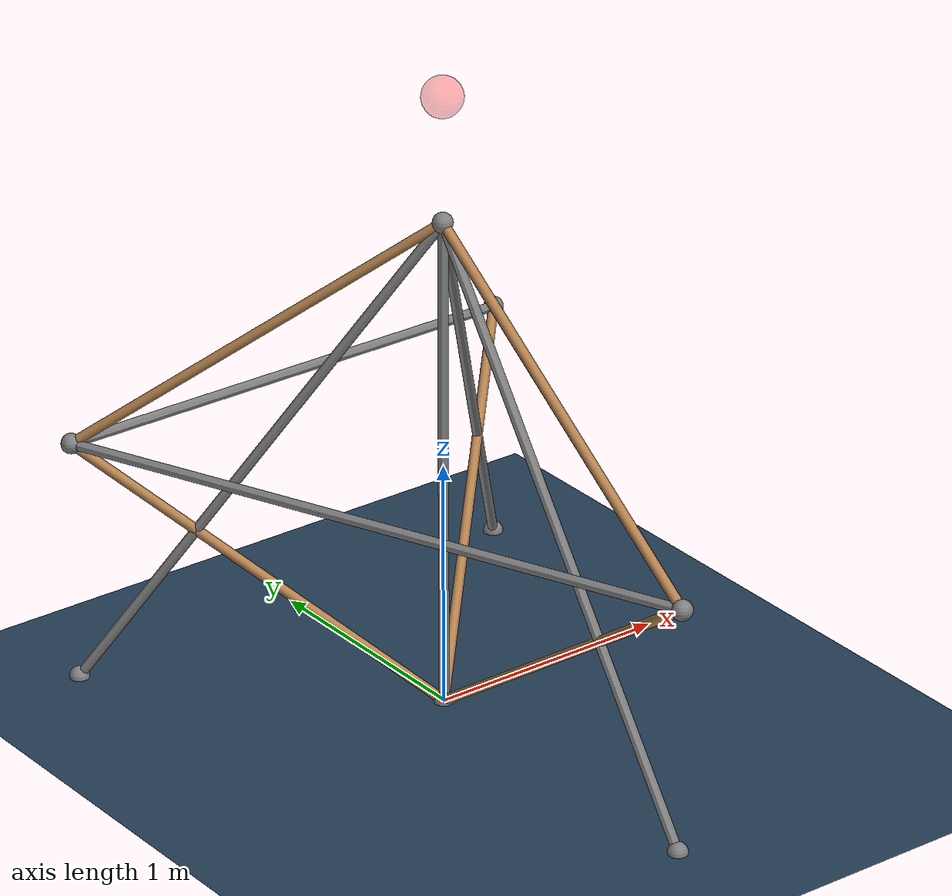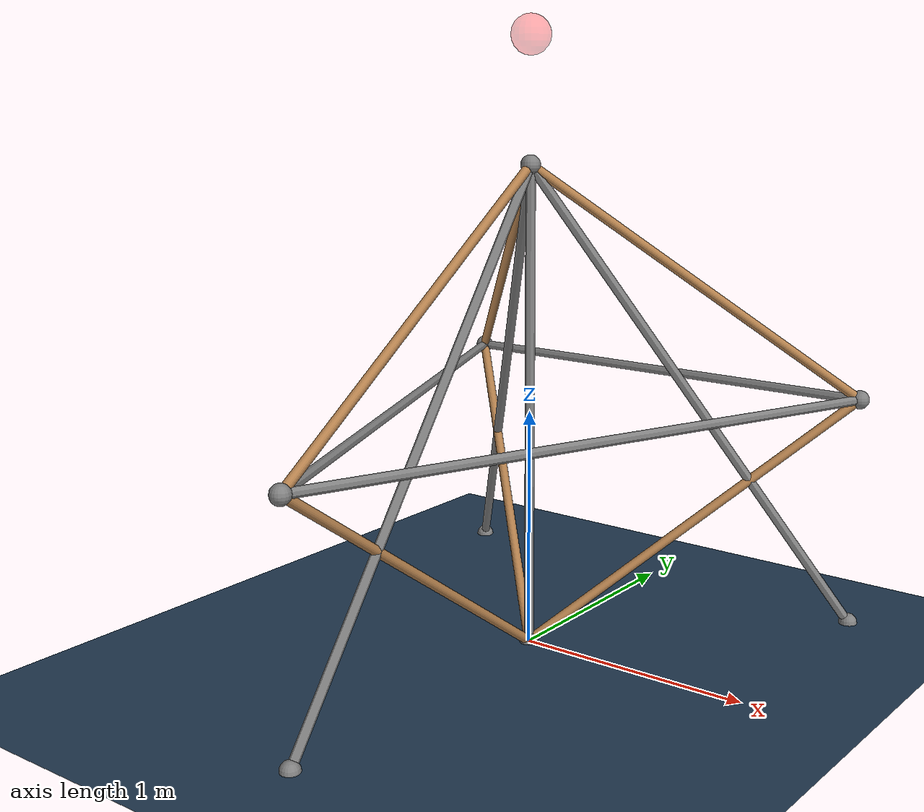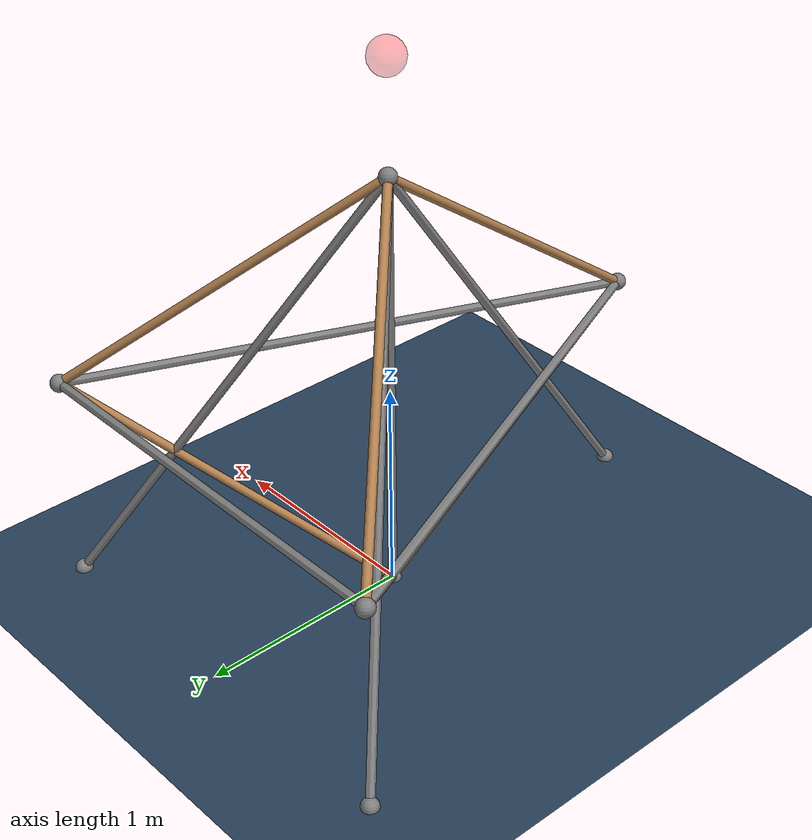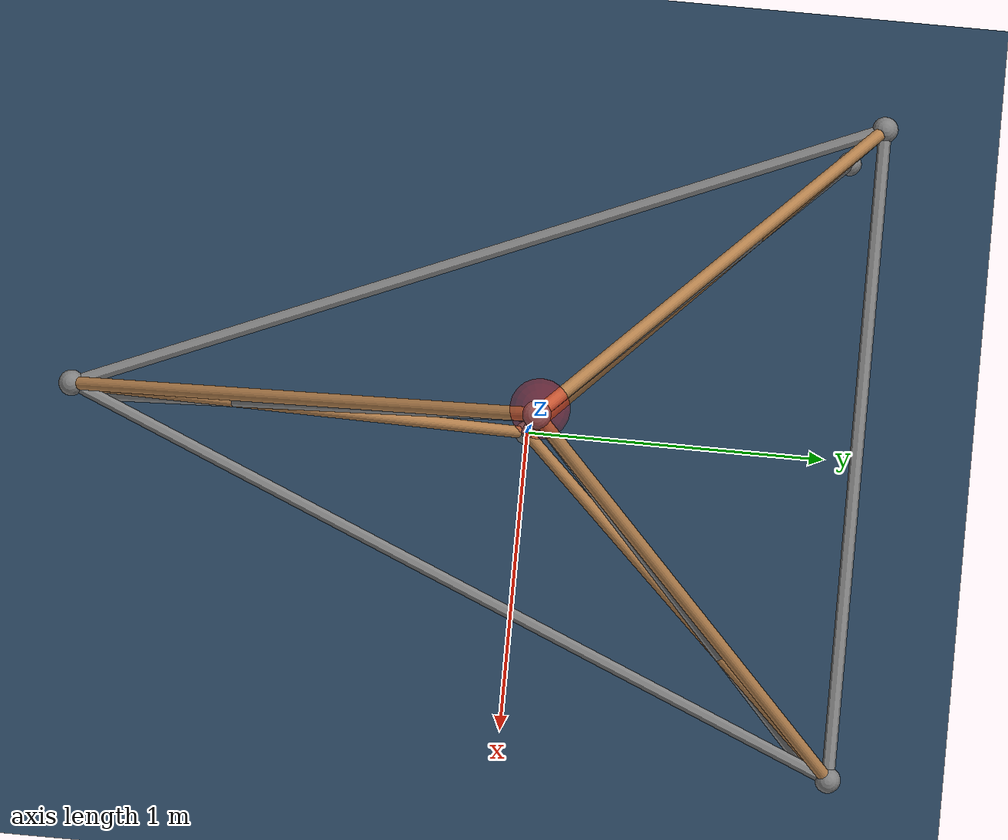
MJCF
<mujoco model="dbar3d">
    <include file="./common/visual.xml"/>
    <include file="./common/skybox.xml"/>
    <include file="./common/materials.xml"/>

    <option timestep="0.01" iterations="50" solver="Newton" integrator="RK4" tolerance="1e-12" gravity = "0 0 0" collision="predefined" viscosity="0"/>

    <size njmax="200" nconmax="100" nstack="2400"/>

    <visual>
        <rgba haze=".15 .25 .35 1"/>
    </visual>

    <default>
        <joint type="ball" pos="0 0 0" limited="false" damping="0"/>
        <motor ctrllimited="false" ctrlrange="-100 100"/>
		<tendon stiffness="100" damping="0.5"/>
		<geom size="0.02" mass="1"/>
		<site size="0.04"/>
    </default>

    <worldbody>
        <light directional="true" diffuse=".8 .8 .8" specular=".2 .2 .2" pos="0 0 5" dir="0 0 -1"/>

        <body name="lbar1" pos="0 0 0">
            <geom type="capsule" fromto="0 0 0  1 1 1" material="self"/>
			<site name="lb1e" pos="1 1 1"/>
			<joint name="lj1"/>
            <body name="lbar2" pos="1 1 1">
                <geom type="capsule" fromto="0 0 0  -1 -1 1" material="self"/>
                <joint name="lj2"/>
                <site name="lb2e" pos="-1 -1 1"/>
            </body>
        </body>

        <body name="mbar1" pos="0 0 0">
            <geom type="capsule" fromto="0 0 0  -1 1 1" material="self"/>
			<site name="mb1e" pos="-1 1 1"/>
			<joint name="mj1"/>
            <body name="mbar2" pos="-1 1 1">
                <geom type="capsule" fromto="0 0 0  1 -1 1" material="self"/>
                <joint name="mj2"/>
            </body>
        </body>

        <body name="rbar1" pos="0 0 0">
            <geom type="capsule" fromto="0 0 0  0 -1.414 1" material="self"/>
			<site name="rb1e" pos="0 -1.414 1"/>
			<joint name="rj1"/>
            <body name="rbar2" pos="0 -1.414 1">
                <geom type="capsule" fromto="0 0 0  0 1.414 1" material="self"/>
                <joint name="rj2"/>
            </body>
        </body>

		<body pos="0 0 0">
			<geom name="floor" pos="0 0 0" size="0 0 1" type="plane" material="grid"/>
			<site name="f0" pos="0 0 0"/>
			<site name="fl" pos="1 1 0"/>
			<site name="fm" pos="-1 1 0"/>
            <site name="fr" pos="0 -1.414 0"/>
			<site name="target" pos="0. 0. 2.5" size="0.08" rgba="1 0 0 .3"/>
		</body>
    </worldbody>

	<equality>
		<connect active="true" name='c1' body1='lbar2' body2='mbar2' anchor='-1 -1 1'/>
		<connect active="true" name='c2' body1='lbar2' body2='rbar2' anchor='-1 -1 1'/>
	</equality>

    <tendon>
        <spatial name="S1" width="0.02">
            <site site="f0"/>
            <site site="lb2e"/>
        </spatial>
		<spatial name="S2" width="0.02">
            <site site="lb1e"/>
            <site site="mb1e"/>
        </spatial>
		<spatial name="S3" width="0.02">
            <site site="mb1e"/>
            <site site="rb1e"/>
        </spatial>
		<spatial name="S4" width="0.02">
            <site site="lb1e"/>
            <site site="rb1e"/>
        </spatial>
        <spatial name="S5" width="0.02">
            <site site="lb2e"/>
            <site site="fl"/>
        </spatial>
        <spatial name="S6" width="0.02">
            <site site="lb2e"/>
            <site site="fm"/>
        </spatial>
        <spatial name="S7" width="0.02">
            <site site="lb2e"/>
            <site site="fr"/>
        </spatial>
    </tendon>

    <actuator>
        <motor tendon="S1" gear="1"/>
        <motor tendon="S2" gear="1"/>
		<motor tendon="S3" gear="1"/>
        <motor tendon="S4" gear="1"/>
        <motor tendon="S5" gear="1"/>
        <motor tendon="S6" gear="1"/>
		<motor tendon="S7" gear="1"/>
    </actuator>

	<sensor>
		<framelinvel objtype="site" objname="lb1e"/>
		<framelinvel objtype="site" objname="lb2e"/>
		<framelinvel objtype="site" objname="mb1e"/>
        <framelinvel objtype="site" objname="rb1e"/>
	</sensor>
</mujoco>

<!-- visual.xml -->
<mujoco>
    <visual>
        <headlight ambient=".4 .4 .4" diffuse=".8 .8 .8" specular="0.1 0.1 0.1" />
        <map znear=".01" />
        <quality shadowsize="2048" />
    </visual>
</mujoco>

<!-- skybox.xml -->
<mujoco>
    <asset>
        <texture name="skybox" type="skybox" builtin="gradient" rgb1=".4 .6 .8" rgb2="0 0 0" width="800" height="800" mark="random" markrgb="1 1 1" />
    </asset>
</mujoco>

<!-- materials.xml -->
<!--
Common textures, colors and materials to be used throughout this suite. Some
materials such as xxx_highlight are activated on occurence of certain events,
for example receiving a positive reward.
-->
<mujoco>
    <asset>
        <texture name="grid" type="2d" builtin="checker" rgb1=".1 .2 .3" rgb2=".2 .3 .4" width="300" height="300" mark="edge" markrgb=".2 .3 .4" />
        <material name="grid" texture="grid" texrepeat="1 1" texuniform="true" reflectance=".2" />
        <material name="self" rgba=".7 .5 .3 1" />
        <material name="self_default" rgba=".7 .5 .3 1" />
        <material name="self_highlight" rgba="0 .5 .3 1" />
        <material name="effector" rgba=".7 .4 .2 1" />
        <material name="effector_default" rgba=".7 .4 .2 1" />
        <material name="effector_highlight" rgba="0 .5 .3 1" />
        <material name="decoration" rgba=".3 .5 .7 1" />
        <material name="eye" rgba="0 .2 1 1" />
        <material name="target" rgba=".6 .3 .3 1" />
        <material name="target_default" rgba=".6 .3 .3 1" />
        <material name="target_highlight" rgba=".6 .3 .3 .4" />
    </asset>
</mujoco>
